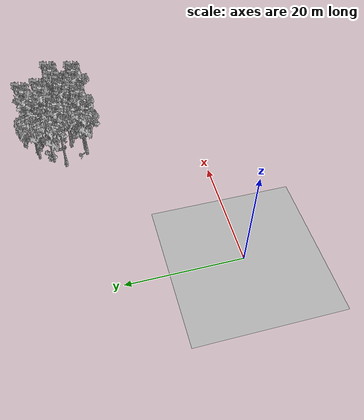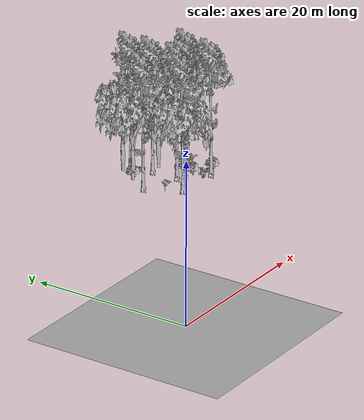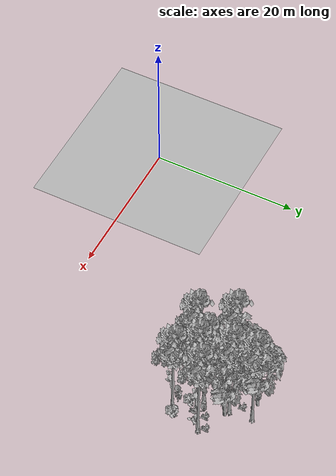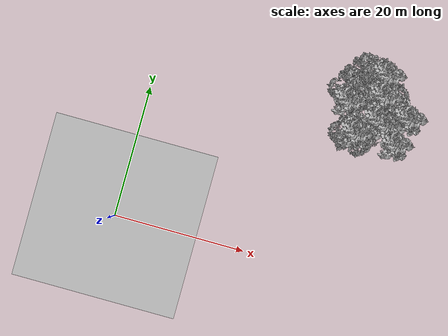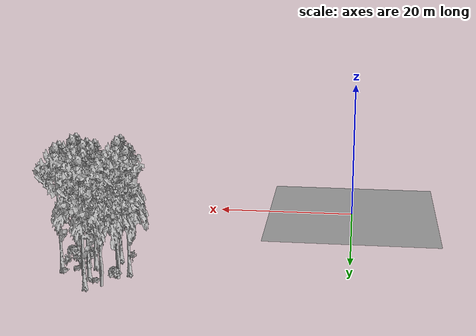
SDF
<sdf version="1.7">
 <world name="default">
  <model name="ground_plane">
   <static>1</static>
   <link name="link">
    <collision name="collision">
     <pose>-50 0 0 0 -0 0</pose>
     <geometry><plane><normal>0 0 1</normal><size>80 80</size></plane></geometry>
     <surface><contact><ode><min_depth>0.01</min_depth><max_vel>0</max_vel></ode></contact></surface>
    </collision>
    <visual name="grass">
     <cast_shadows>0</cast_shadows>
     <geometry>
      <mesh>
       <scale>0.46714285714285714 0.46714285714285714 0.1</scale>
       <uri>file://grass_plane/meshes/grass_plane.dae</uri>
      </mesh>
     </geometry>
    </visual>
   </link>
  </model>
  <model name="Tree 60">
   <static>1</static>
   <pose>37.42308400447192 25.08193918458133 0 1.57079 -0 0</pose>
   <link name="link">
    <collision name="collision">
     <geometry><mesh><scale>3.5 5 3.5</scale><uri>model://tree_9/meshes/tree_9.obj</uri></mesh></geometry>
    </collision>
    <visual name="visual">
     <geometry><mesh><scale>3.5 5 3.5</scale><uri>model://tree_9/meshes/tree_9.obj</uri></mesh></geometry>
    </visual>
   </link>
  </model>
  <model name="Tree 87">
   <static>1</static>
   <pose>36.45167124879342 21.02824817115534 0 1.57079 -0 0</pose>
   <link name="link">
    <collision name="collision">
     <geometry><mesh><scale>3.5 5 3.5</scale><uri>model://tree_9/meshes/tree_9.obj</uri></mesh></geometry>
    </collision>
    <visual name="visual">
     <geometry><mesh><scale>3.5 5 3.5</scale><uri>model://tree_9/meshes/tree_9.obj</uri></mesh></geometry>
    </visual>
   </link>
  </model>
  <model name="Tree 153">
   <static>1</static>
   <pose>30.940229011079595 21.36212129075581 0 1.57079 -0 0</pose>
   <link name="link">
    <collision name="collision">
     <geometry><mesh><scale>3.5 5 3.5</scale><uri>model://tree_2/meshes/tree_2.obj</uri></mesh></geometry>
    </collision>
    <visual name="visual">
     <geometry><mesh><scale>3.5 5 3.5</scale><uri>model://tree_2/meshes/tree_2.obj</uri></mesh></geometry>
    </visual>
   </link>
  </model>
  <model name="Tree 231">
   <static>1</static>
   <pose>30.68090144547938 30.022169330101008 0 1.57079 -0 0</pose>
   <link name="link">
    <collision name="collision">
     <geometry><mesh><scale>3.5 5 3.5</scale><uri>model://tree_2/meshes/tree_2.obj</uri></mesh></geometry>
    </collision>
    <visual name="visual">
     <geometry><mesh><scale>3.5 5 3.5</scale><uri>model://tree_2/meshes/tree_2.obj</uri></mesh></geometry>
    </visual>
   </link>
  </model>
  <model name="Tree 237">
   <static>1</static>
   <pose>28.34698904749277 25.376318236200575 0 1.57079 -0 0</pose>
   <link name="link">
    <collision name="collision">
     <geometry><mesh><scale>3.5 5 3.5</scale><uri>model://tree_9/meshes/tree_9.obj</uri></mesh></geometry>
    </collision>
    <visual name="visual">
     <geometry><mesh><scale>3.5 5 3.5</scale><uri>model://tree_9/meshes/tree_9.obj</uri></mesh></geometry>
    </visual>
   </link>
  </model>
  <model name="Tree 342">
   <static>1</static>
   <pose>33.93887172007959 27.029335870462276 0 1.57079 -0 0</pose>
   <link name="link">
    <collision name="collision">
     <geometry><mesh><scale>3.5 5 3.5</scale><uri>model://tree_2/meshes/tree_2.obj</uri></mesh></geometry>
    </collision>
    <visual name="visual">
     <geometry><mesh><scale>3.5 5 3.5</scale><uri>model://tree_2/meshes/tree_2.obj</uri></mesh></geometry>
    </visual>
   </link>
  </model>
  <model name="Tree 458">
   <static>1</static>
   <pose>30.533677159253614 21.138690710209218 0 1.57079 -0 0</pose>
   <link name="link">
    <collision name="collision">
     <geometry><mesh><scale>3.5 5 3.5</scale><uri>model://tree_9/meshes/tree_9.obj</uri></mesh></geometry>
    </collision>
    <visual name="visual">
     <geometry><mesh><scale>3.5 5 3.5</scale><uri>model://tree_9/meshes/tree_9.obj</uri></mesh></geometry>
    </visual>
   </link>
  </model>
  <model name="Tree 526">
   <static>1</static>
   <pose>33.1482216955327 27.30097427058911 0 1.57079 -0 0</pose>
   <link name="link">
    <collision name="collision">
     <geometry><mesh><scale>3.5 5 3.5</scale><uri>model://tree_9/meshes/tree_9.obj</uri></mesh></geometry>
    </collision>
    <visual name="visual">
     <geometry><mesh><scale>3.5 5 3.5</scale><uri>model://tree_9/meshes/tree_9.obj</uri></mesh></geometry>
    </visual>
   </link>
  </model>
  <model name="Tree 581">
   <static>1</static>
   <pose>33.20148038035343 23.780797956438853 0 1.57079 -0 0</pose>
   <link name="link">
    <collision name="collision">
     <geometry><mesh><scale>3.5 5 3.5</scale><uri>model://tree_9/meshes/tree_9.obj</uri></mesh></geometry>
    </collision>
    <visual name="visual">
     <geometry><mesh><scale>3.5 5 3.5</scale><uri>model://tree_9/meshes/tree_9.obj</uri></mesh></geometry>
    </visual>
   </link>
  </model>
  <model name="Tree 588">
   <static>1</static>
   <pose>29.179868471060416 27.514352851558186 0 1.57079 -0 0</pose>
   <link name="link">
    <collision name="collision">
     <geometry><mesh><scale>3.5 5 3.5</scale><uri>model://tree_2/meshes/tree_2.obj</uri></mesh></geometry>
    </collision>
    <visual name="visual">
     <geometry><mesh><scale>3.5 5 3.5</scale><uri>model://tree_2/meshes/tree_2.obj</uri></mesh></geometry>
    </visual>
   </link>
  </model>
  <model name="Tree 590">
   <static>1</static>
   <pose>32.85808650649726 30.33313824395522 0 1.57079 -0 0</pose>
   <link name="link">
    <collision name="collision">
     <geometry><mesh><scale>3.5 5 3.5</scale><uri>model://tree_9/meshes/tree_9.obj</uri></mesh></geometry>
    </collision>
    <visual name="visual">
     <geometry><mesh><scale>3.5 5 3.5</scale><uri>model://tree_9/meshes/tree_9.obj</uri></mesh></geometry>
    </visual>
   </link>
  </model>
  <model name="Tree 635">
   <static>1</static>
   <pose>34.334078262535314 23.377290556160858 0 1.57079 -0 0</pose>
   <link name="link">
    <collision name="collision">
     <geometry><mesh><scale>3.5 5 3.5</scale><uri>model://tree_9/meshes/tree_9.obj</uri></mesh></geometry>
    </collision>
    <visual name="visual">
     <geometry><mesh><scale>3.5 5 3.5</scale><uri>model://tree_9/meshes/tree_9.obj</uri></mesh></geometry>
    </visual>
   </link>
  </model>
  <model name="Bush 3">
   <static>1</static>
   <pose>28.715314423483235 22.465041487404463 0 1.57079 -0 0</pose>
   <link name="link">
    <collision name="collision">
     <geometry><mesh><scale>2 2 2</scale><uri>model://bush_5/meshes/bush_5.obj</uri></mesh></geometry>
     <surface><contact><collide_without_contact>false</collide_without_contact></contact></surface>
    </collision>
    <visual name="visual">
     <geometry><mesh><scale>2 2 2</scale><uri>model://bush_5/meshes/bush_5.obj</uri></mesh></geometry>
    </visual>
   </link>
  </model>
  <model name="Bush 109">
   <static>1</static>
   <pose>37.081283443783036 24.320506561914954 0 1.57079 -0 0</pose>
   <link name="link">
    <collision name="collision">
     <geometry><mesh><scale>2 2 2</scale><uri>model://bush_0/meshes/bush_0.obj</uri></mesh></geometry>
     <surface><contact><collide_without_contact>false</collide_without_contact></contact></surface>
    </collision>
    <visual name="visual">
     <geometry><mesh><scale>2 2 2</scale><uri>model://bush_0/meshes/bush_0.obj</uri></mesh></geometry>
    </visual>
   </link>
  </model>
  <model name="Bush 257">
   <static>1</static>
   <pose>34.475478770875114 22.311800419923145 0 1.57079 -0 0</pose>
   <link name="link">
    <collision name="collision">
     <geometry><mesh><scale>2 2 2</scale><uri>model://bush_1/meshes/bush_1.obj</uri></mesh></geometry>
     <surface><contact><collide_without_contact>false</collide_without_contact></contact></surface>
    </collision>
    <visual name="visual">
     <geometry><mesh><scale>2 2 2</scale><uri>model://bush_1/meshes/bush_1.obj</uri></mesh></geometry>
    </visual>
   </link>
  </model>
  <model name="Bush 276">
   <static>1</static>
   <pose>37.01572533673247 21.081130257997273 0 1.57079 -0 0</pose>
   <link name="link">
    <collision name="collision">
     <geometry><mesh><scale>2 2 2</scale><uri>model://bush_1/meshes/bush_1.obj</uri></mesh></geometry>
     <surface><contact><collide_without_contact>false</collide_without_contact></contact></surface>
    </collision>
    <visual name="visual">
     <geometry><mesh><scale>2 2 2</scale><uri>model://bush_1/meshes/bush_1.obj</uri></mesh></geometry>
    </visual>
   </link>
  </model>
  <model name="Bush 277">
   <static>1</static>
   <pose>35.137075904789214 23.311019209978163 0 1.57079 -0 0</pose>
   <link name="link">
    <collision name="collision">
     <geometry><mesh><scale>2 2 2</scale><uri>model://bush_2/meshes/bush_2.obj</uri></mesh></geometry>
     <surface><contact><collide_without_contact>false</collide_without_contact></contact></surface>
    </collision>
    <visual name="visual">
     <geometry><mesh><scale>2 2 2</scale><uri>model://bush_2/meshes/bush_2.obj</uri></mesh></geometry>
    </visual>
   </link>
  </model>
  <model name="Bush 292">
   <static>1</static>
   <pose>36.53901764620596 21.331223374842594 0 1.57079 -0 0</pose>
   <link name="link">
    <collision name="collision">
     <geometry><mesh><scale>2 2 2</scale><uri>model://bush_2/meshes/bush_2.obj</uri></mesh></geometry>
     <surface><contact><collide_without_contact>false</collide_without_contact></contact></surface>
    </collision>
    <visual name="visual">
     <geometry><mesh><scale>2 2 2</scale><uri>model://bush_2/meshes/bush_2.obj</uri></mesh></geometry>
    </visual>
   </link>
  </model>
  <model name="Bush 386">
   <static>1</static>
   <pose>34.48279896503722 20.82419314054262 0 1.57079 -0 0</pose>
   <link name="link">
    <collision name="collision">
     <geometry><mesh><scale>2 2 2</scale><uri>model://bush_4/meshes/bush_4.obj</uri></mesh></geometry>
     <surface><contact><collide_without_contact>false</collide_without_contact></contact></surface>
    </collision>
    <visual name="visual">
     <geometry><mesh><scale>2 2 2</scale><uri>model://bush_4/meshes/bush_4.obj</uri></mesh></geometry>
    </visual>
   </link>
  </model>
  <model name="Bush 408">
   <static>1</static>
   <pose>29.62952278388812 27.628935944760656 0 1.57079 -0 0</pose>
   <link name="link">
    <collision name="collision">
     <geometry><mesh><scale>2 2 2</scale><uri>model://bush_1/meshes/bush_1.obj</uri></mesh></geometry>
     <surface><contact><collide_without_contact>false</collide_without_contact></contact></surface>
    </collision>
    <visual name="visual">
     <geometry><mesh><scale>2 2 2</scale><uri>model://bush_1/meshes/bush_1.obj</uri></mesh></geometry>
    </visual>
   </link>
  </model>
  <model name="Bush 510">
   <static>1</static>
   <pose>35.33630121239672 25.053383707579002 0 1.57079 -0 0</pose>
   <link name="link">
    <collision name="collision">
     <geometry><mesh><scale>2 2 2</scale><uri>model://bush_2/meshes/bush_2.obj</uri></mesh></geometry>
     <surface><contact><collide_without_contact>false</collide_without_contact></contact></surface>
    </collision>
    <visual name="visual">
     <geometry><mesh><scale>2 2 2</scale><uri>model://bush_2/meshes/bush_2.obj</uri></mesh></geometry>
    </visual>
   </link>
  </model>
  <model name="Bush 544">
   <static>1</static>
   <pose>31.912738160147995 28.56665294732889 0 1.57079 -0 0</pose>
   <link name="link">
    <collision name="collision">
     <geometry><mesh><scale>2 2 2</scale><uri>model://bush_2/meshes/bush_2.obj</uri></mesh></geometry>
     <surface><contact><collide_without_contact>false</collide_without_contact></contact></surface>
    </collision>
    <visual name="visual">
     <geometry><mesh><scale>2 2 2</scale><uri>model://bush_2/meshes/bush_2.obj</uri></mesh></geometry>
    </visual>
   </link>
  </model>
  <model name="Bush 579">
   <static>1</static>
   <pose>36.87520978147356 25.860623018951856 0 1.57079 -0 0</pose>
   <link name="link">
    <collision name="collision">
     <geometry><mesh><scale>2 2 2</scale><uri>model://bush_2/meshes/bush_2.obj</uri></mesh></geometry>
     <surface><contact><collide_without_contact>false</collide_without_contact></contact></surface>
    </collision>
    <visual name="visual">
     <geometry><mesh><scale>2 2 2</scale><uri>model://bush_2/meshes/bush_2.obj</uri></mesh></geometry>
    </visual>
   </link>
  </model>
 </world>
</sdf>
